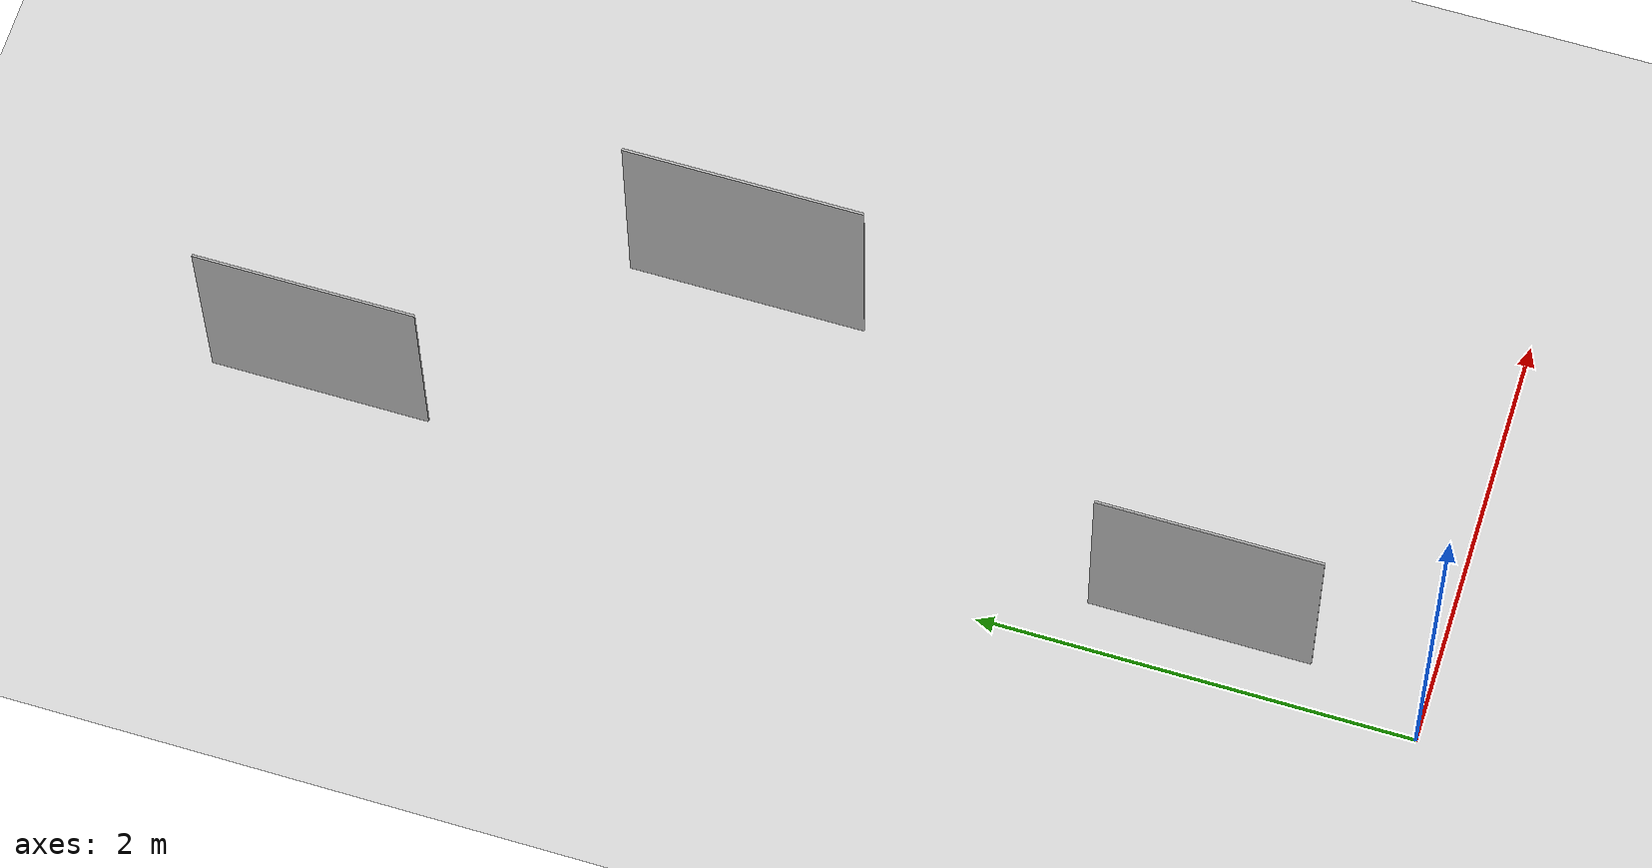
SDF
<sdf version="1.6">
 <world name="default">
  <light name="sun" type="directional">
   <pose>0 0 10 0 -0 0</pose>
   <diffuse>0.8 0.8 0.8 1</diffuse>
   <specular>0.2 0.2 0.2 1</specular>
   <attenuation>
    <range>1000</range>
    <constant>0.9</constant>
    <linear>0.01</linear>
    <quadratic>0.001</quadratic>
   </attenuation>
   <direction>-0.5 0.1 -0.9</direction>
  </light>
  <model name="ground_plane">
   <static>1</static>
   <link name="link">
    <collision name="collision">
     <geometry><plane><normal>0 0 1</normal><size>100 100</size></plane></geometry>
     <surface><friction><ode><mu>100</mu><mu2>50</mu2></ode></friction></surface>
    </collision>
    <visual name="visual">
     <cast_shadows>0</cast_shadows>
     <geometry><plane><normal>0 0 1</normal><size>100 100</size></plane></geometry>
     <material>
      <script><uri>file://media/materials/scripts/gazebo.material</uri><name>Gazebo/Grey</name></script>
     </material>
    </visual>
   </link>
  </model>
  <gravity>0 0 -9.8</gravity>
  <magnetic_field>6e-06 2.3e-05 -4.2e-05</magnetic_field>
  <atmosphere type="adiabatic"/>
  <physics name="default_physics" default="0" type="ode">
   <max_step_size>0.001</max_step_size>
   <real_time_factor>1</real_time_factor>
   <real_time_update_rate>1000</real_time_update_rate>
  </physics>
  <scene><ambient>0.4 0.4 0.4 1</ambient><background>0.7 0.7 0.7 1</background><shadows>1</shadows></scene>
  <audio><device>default</device></audio>
  <spherical_coordinates>
   <surface_model>EARTH_WGS84</surface_model>
   <latitude_deg>0</latitude_deg>
   <longitude_deg>0</longitude_deg>
   <elevation>0</elevation>
   <heading_deg>0</heading_deg>
  </spherical_coordinates>
  <model name="Apriltag36_11_00000">
   <link name="main">
    <visual name="main_Visual">
     <geometry><box><size>1 1 0.01</size></box></geometry>
     <material>
      <script>
       <uri>model://Apriltag36_11_00000/materials/scripts</uri>
       <uri>model://Apriltag36_11_00000/materials/textures</uri>
       <name>Apriltag36_11_00000</name>
      </script>
     </material>
    </visual>
   </link>
   <static>1</static>
   <pose>0 1 1 0 1.57079 0</pose>
  </model>
  <model name="Apriltag36_11_00001">
   <link name="main">
    <visual name="main_Visual">
     <geometry><box><size>1 1 0.01</size></box></geometry>
     <material>
      <script>
       <uri>model://Apriltag36_11_00001/materials/scripts</uri>
       <uri>model://Apriltag36_11_00001/materials/textures</uri>
       <name>Apriltag36_11_00001</name>
      </script>
     </material>
    </visual>
   </link>
   <static>1</static>
   <pose>0 5 1 0 1.57079 0</pose>
  </model>
  <model name="Apriltag36_11_00002">
   <link name="main">
    <visual name="main_Visual">
     <geometry><box><size>1 1 0.01</size></box></geometry>
     <material>
      <script>
       <uri>model://Apriltag36_11_00002/materials/scripts</uri>
       <uri>model://Apriltag36_11_00002/materials/textures</uri>
       <name>Apriltag36_11_00002</name>
      </script>
     </material>
    </visual>
   </link>
   <static>1</static>
   <pose>0 3 3 3.14159 1.57073 3.14159</pose>
  </model>
 </world>
</sdf>
